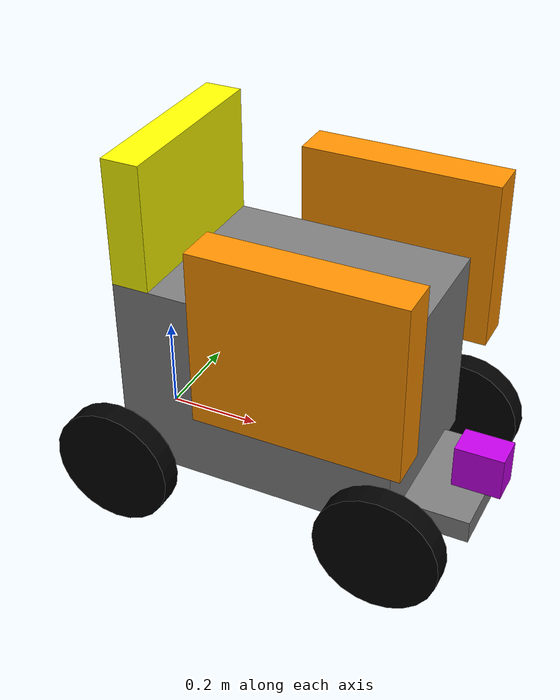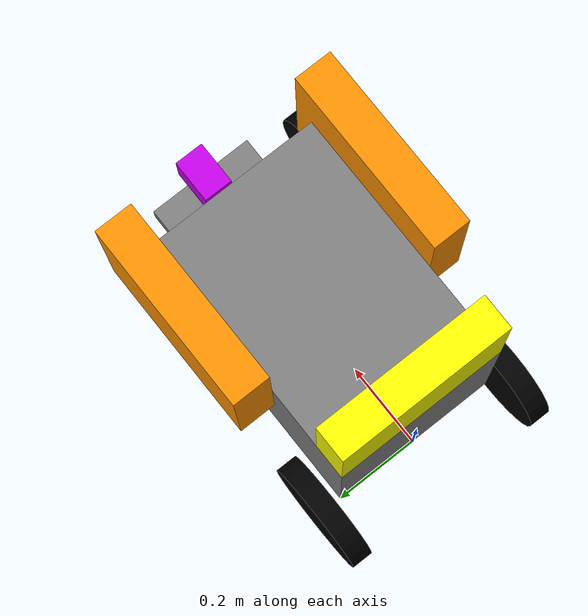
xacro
<?xml version="1.0"?>
<robot xmlns:xacro="http://www.ros.org/wiki/xacro" name="whill_modelc" >
    <material name="black">
        <color rgba="0.0 0.0 0.0 1.0" />
    </material>
    <link name="base_link">

    </link>

    <link name="base_floor">
        <visual>
            <geometry>
                <box size="0.600 0.400 0.41750"/>
            </geometry>
            <material name="grey">
                <color rgba="0.5 0.5 0.5 1.0"/>
            </material>
        </visual>

        <collision>
            <geometry>
                <box size="0.600 0.400 0.41750"/>
            </geometry>
        </collision>

        <inertial>
            <origin xyz="0 0 0" rpy="0 0 0" />
            <mass value="40" />
            <inertia ixx="1.0"  ixy="0.0"   ixz="0.0"
                                iyy="1.0"   iyz="0.0"
                                            izz="1.0" />
        </inertial>
    </link>

    <joint name="base_body_joint" type="fixed">
        <parent link="base_link" />
        <child link="base_floor" />
        <origin xyz="0.3 0 0.20875" rpy="0 0 0"/>
    </joint>

    <link name="footrest_link">
        <collision>
            <geometry>
                <box size="0.250 0.260 0.050"/>
            </geometry>
        </collision>
        <visual>
            <geometry>
                <box size="0.250 0.260 0.050"/>
            </geometry>
            <material name="grey">
                <color rgba="0.5 0.5 0.5 1.0"/>
            </material>
        </visual>
        <inertial>
            <origin xyz="0 0 0" rpy="0 0 0" />
            <mass value="1" />
            <inertia ixx="1.0"  ixy="0.0"   ixz="0.0"
                                iyy="1.0"   iyz="0.0"
                                            izz="1.0" />
        </inertial>
    </link>

    <joint name="footrest_joint" type="fixed">
        <parent link="base_floor" />
        <child link="footrest_link" />
        <origin xyz="0.320 0 -0.20875" rpy="0 0 0"/>
    </joint>

    <link name="backrest_link">
        <collision>
            <geometry>
                <box size="0.08 0.400 0.270"/>
            </geometry>
        </collision>
        <visual>
            <geometry>
                <box size="0.08 0.400 0.270"/>
            </geometry>
            <material name="yellow">
                <color rgba="1 1 0 1.0"/>
            </material>
        </visual>
        <inertial>
            <origin xyz="0 0 0" rpy="0 0 0" />
            <mass value="1" />
            <inertia ixx="1.0"  ixy="0.0"   ixz="0.0"
                                iyy="1.0"   iyz="0.0"
                                            izz="1.0" />
        </inertial>
    </link>

    <joint name="backrest_joint" type="fixed">
        <parent link="base_floor" />
        <child link="backrest_link" />
        <origin xyz="-0.26 0 0.34375" rpy="0 0 0"/>
    </joint>

    <link name="right_armrest_link">
        <collision>
            <geometry>
                <box size="0.43 0.0875 0.37"/>
            </geometry>
        </collision>
        <visual>
            <geometry>
                <box size="0.43 0.0875 0.37"/>
            </geometry>
            <material name="orange">
                <color rgba="1 0.57 0 1.0"/>
            </material>
        </visual>
        <inertial>
            <origin xyz="0 0 0" rpy="0 0 0" />
            <mass value="1" />
            <inertia ixx="1.0"  ixy="0.0"   ixz="0.0"
                                iyy="1.0"   iyz="0.0"
                                            izz="1.0" />
        </inertial>
    </link>

    <joint name="right_armrest_joint" type="fixed">
        <parent link="base_floor" />
        <child link="right_armrest_link" />
        <origin xyz="0.135 0.24375 0.19375" rpy="0 0 0"/>
    </joint>

    <link name="left_armrest_link">
        <collision>
            <geometry>
                <box size="0.43 0.0875 0.37"/>
            </geometry>
        </collision>
        <visual>
            <geometry>
                <box size="0.43 0.0875 0.37"/>
            </geometry>
            <material name="orange">
                <color rgba="1 0.57 0 1.0"/>
            </material>
        </visual>
        <inertial>
            <origin xyz="0 0 0" rpy="0 0 0" />
            <mass value="1" />
            <inertia ixx="1.0"  ixy="0.0"   ixz="0.0"
                                iyy="1.0"   iyz="0.0"
                                            izz="1.0" />
        </inertial>
    </link>

    <joint name="left_armrest_joint" type="fixed">
        <parent link="base_floor" />
        <child link="left_armrest_link" />
        <origin xyz="0.135 -0.24375 0.19375" rpy="0 0 0"/>
    </joint>

    <link name="left_wheel_link">
        <visual>
            <geometry>
                <cylinder length="0.05" radius="0.1325"/>
            </geometry>
            <origin xyz="0 0 0" rpy="0 0 0" />
            <material name="black" />

        </visual>

        <collision>
            <geometry>
                <cylinder length="0.05" radius="0.1325"/>
            </geometry>
        </collision>

        <inertial>
            <origin xyz="0 0 0"/>
            <mass value="0.500"/>
            <inertia ixx="0.0013541667" ixy="0" ixz="0" iyy="0.0013541667" iyz="0" izz="0.0025"/>
        </inertial>
    </link>

    <joint name="leftWheel" type="continuous">
        <parent link="base_floor" />
        <child link="left_wheel_link" />
        <origin xyz="-0.3 0.245 -0.20875" rpy="-1.57 0 0" />
        <axis xyz="0 0 1" />
    </joint>

    <link name="right_wheel_link">
        <collision>
            <origin xyz="0 0 0" rpy="0 0 0" />
            <geometry>
                <cylinder length="0.05" radius="0.1325"/>
            </geometry>
        </collision>
        <visual>
            <origin xyz="0 0 0" rpy="0 0 0" />
            <geometry>
                <cylinder length="0.05" radius="0.1325"/>
            </geometry>
            <material name="black" />

        </visual>
        <inertial>
            <origin xyz="0 0 0"/>
            <mass value="0.500"/>
            <inertia ixx="0.0013541667" ixy="0" ixz="0" iyy="0.0013541667" iyz="0" izz="0.0025"/>
        </inertial>
    </link>

    <joint name="rightWheel" type="continuous">
        <parent link="base_floor" />
        <child link="right_wheel_link" />
        <origin xyz="-0.3 -0.245 -0.20875" rpy="1.57 0 0" />
        <axis xyz="0 0 1" />
    </joint>

    <link name="frontwheel_left">
        <collision>
            <geometry>
                <cylinder length="0.05" radius="0.1325"/>
            </geometry>
        </collision>

        <visual>
            <geometry>
                <cylinder length="0.05" radius="0.1325"/>
            </geometry>
            <material name="black" />

        </visual>

        <inertial>
            <origin xyz="0 0 0" rpy="0 0 0" />
            <mass value="1.0" />
            <inertia ixx="1.0"  ixy="0.0"   ixz="0.0"
                                iyy="1.0"   iyz="0.0"
                                            izz="1.0" />
        </inertial>
    </link>

    <joint name="frontwheel_left_joint" type="fixed">
        <parent link="base_floor" />
        <child link="frontwheel_left" />
        <origin xyz="0.3 -0.245 -0.20875" rpy="1.57 0 0" />
        <axis xyz="0 0 1" />
    </joint>

    <link name="frontwheel_right">
        <collision>
            <geometry>
                <cylinder length="0.05" radius="0.1325"/>
            </geometry>
        </collision>

        <visual>
            <geometry>
                <cylinder length="0.05" radius="0.1325"/>
            </geometry>
            <material name="black" />

        </visual>

        <inertial>
            <origin xyz="0 0 0" rpy="0 0 0" />
            <mass value="1.0" />
            <inertia ixx="1.0"  ixy="0.0"   ixz="0.0"
                                iyy="1.0"   iyz="0.0"
                                            izz="1.0" />
        </inertial>
    </link>

    <joint name="frontwheel_right_joint" type="fixed">
        <parent link="base_floor" />
        <child link="frontwheel_right"/>
        <origin xyz="0.3 0.245 -0.20875" rpy="1.57 0 0" />
        <axis xyz="0 0 -1" />
    </joint>
    <!-- laser -->
     <link name="laser_machine_link">
        <collision>
            <geometry>
                <box size="0.105 0.07 0.095"/>
            </geometry>
        </collision>
        <visual>
            <geometry>
                <box size="0.105 0.07 0.095"/>
            </geometry>
            <material name="purple">
                <color rgba="0.78 0 0.92 1.0"/>
            </material>
        </visual>
        <inertial>
            <origin xyz="0 0 0" rpy="0 0 0" />
            <mass value="1" />
            <inertia ixx="1.0"  ixy="0.0"   ixz="0.0"
                                iyy="1.0"   iyz="0.0"
                                            izz="1.0" />
        </inertial>
    </link>
            <joint name="laser_machine_link2footrest_link" type="fixed">
        <parent link="footrest_link" />
        <child link="laser_machine_link" />
        <origin xyz="0.1045 0 0.0725" rpy="0 0 0"/>
    </joint>

    <link name="laser">
        <collision>
            <geometry>
                <box size="0.01 0.01 0.01"/>
            </geometry>
        </collision>
        <visual>
            <geometry>
                <box size="0.01 0.01 0.01"/>
            </geometry>
            <material name="grey">
                <color rgba="0.5 0.5 0.5 1.0"/>
            </material>
        </visual>
        <inertial>
            <origin xyz="0 0 0" rpy="0 0 0" />
            <mass value="1" />
            <inertia ixx="1.0"  ixy="0.0"   ixz="0.0"
                                iyy="1.0"   iyz="0.0"
                                            izz="1.0" />
        </inertial>
    </link>
            <joint name="laser2laser_machine_link" type="fixed">
        <parent link="laser_machine_link" />
        <child link="laser" />
        <origin xyz="0.0175 0 0.0055" rpy="0 0 0"/>
    </joint>
    <!-- IMU -->
    <link name="imu">
    </link>

    <joint name="imu_joint" type="fixed">
        <axis xyz="0 1 0" />
        <origin xyz="0.02 0 0.05" rpy="0 0.85521133347 3.14159265359"/>
        <parent link="base_link"/>
        <child link="imu"/>
    </joint>

    <!-- ===============  Transmission =============== -->

    <transmission name="right_wheel_trans">
        <type>transmission_interface/SimpleTransmission</type>
        <joint name="rightWheel">
            <hardwareInterface>hardware_interface/VelocityJointInterface</hardwareInterface>
        </joint>
        <actuator name="right_wheel_motor">
            <hardwareInterface>hardware_interface/VelocityJointInterface</hardwareInterface>
            <mechanicalReduction>30</mechanicalReduction>
        </actuator>
    </transmission>

    <transmission name="left_wheel_trans">
        <type>transmission_interface/SimpleTransmission</type>
        <joint name="leftWheel">
            <hardwareInterface>hardware_interface/VelocityJointInterface</hardwareInterface>
        </joint>
        <actuator name="left_wheel_motor">
            <hardwareInterface>hardware_interface/VelocityJointInterface</hardwareInterface>
            <mechanicalReduction>30</mechanicalReduction>
        </actuator>
    </transmission>

    <!-- For Gazebo -->

    <gazebo>
        <plugin name="gazebo_ros_control" filename="libgazebo_ros_control.so">
            <robotNamespace>/whill_simulator</robotNamespace>
        </plugin>
    </gazebo>

    <gazebo reference="base_floor">
        <selfCollide>true</selfCollide>
        <mu1 value="0.05" />
        <mu2 value="0.05" />
    </gazebo>

    <gazebo reference="sensor_arm_link">
        <selfCollide>true</selfCollide>
        <mu1 value="0.05" />
        <mu2 value="0.05" />
    </gazebo>

    <gazebo reference="rearwheel_right">
        <selfCollide>true</selfCollide>
        <mu1 value="1.0" />
        <mu2 value="1.0" />
    </gazebo>

    <gazebo reference="rearwheel_left">
        <selfCollide>true</selfCollide>
        <mu1 value="1.0" />
        <mu2 value="1.0" />
    </gazebo>

    <gazebo reference="frontwheel_right">
        <selfCollide>true</selfCollide>
        <mu1 value="0.0" />
        <mu2 value="0.0" />
    </gazebo>

    <gazebo reference="frontwheel_left">
        <selfCollide>true</selfCollide>
        <mu1 value="0.0" />
        <mu2 value="0.0" />
    </gazebo>

</robot>
